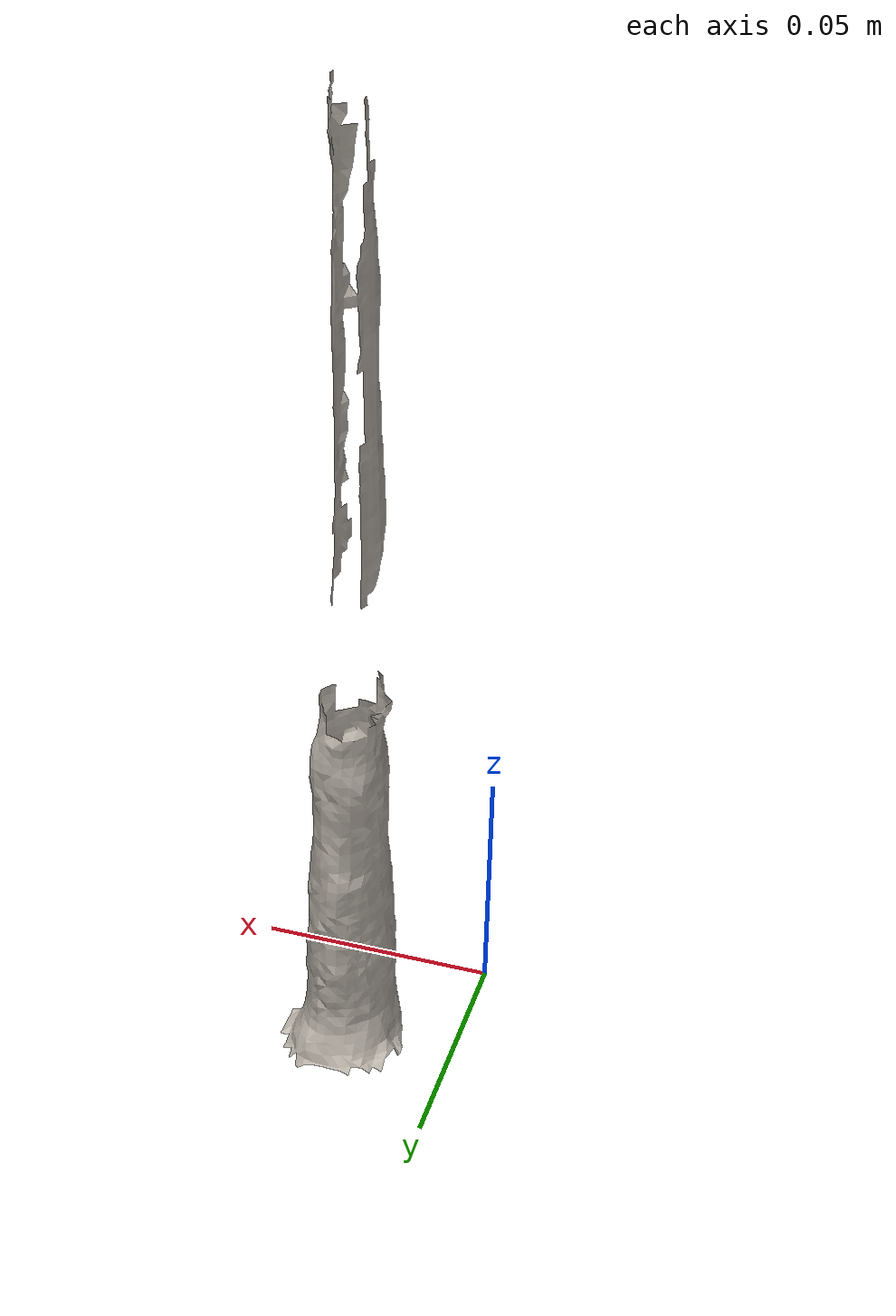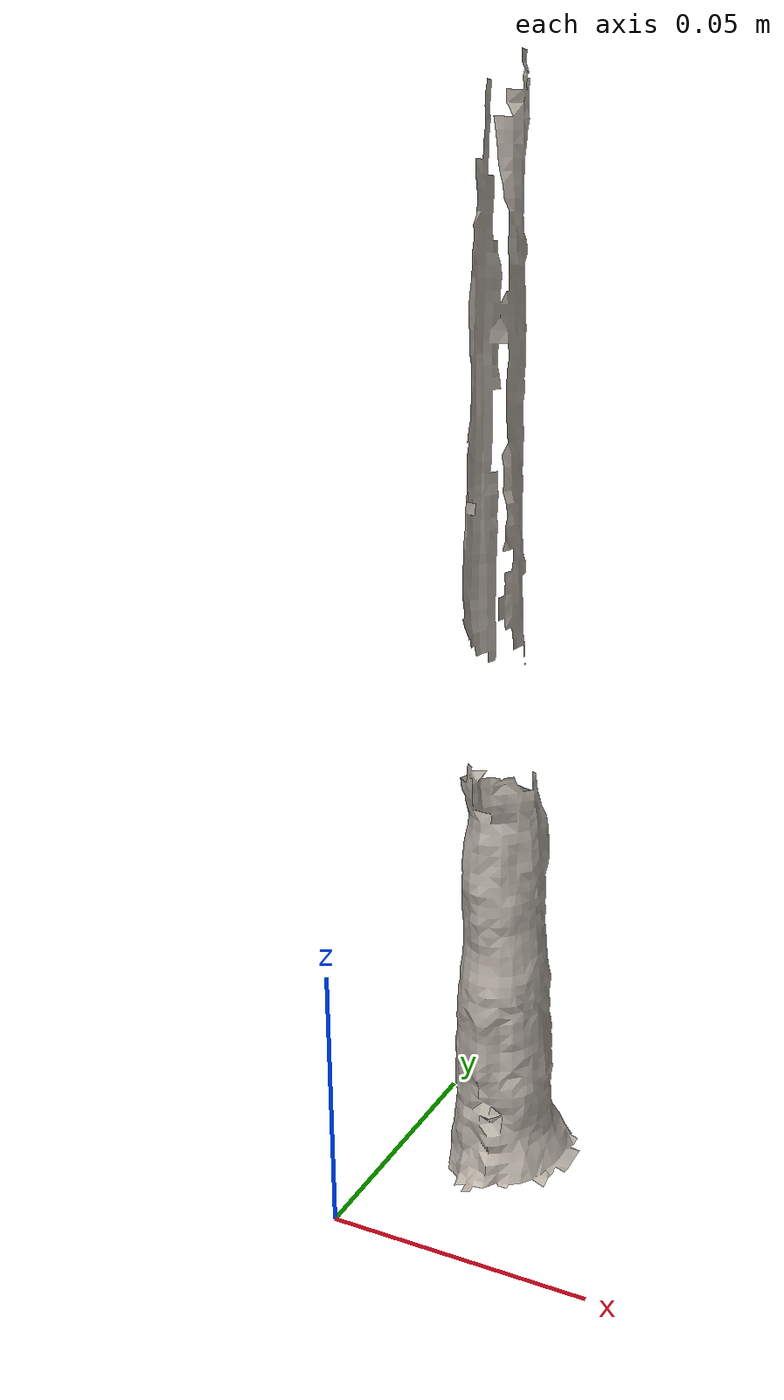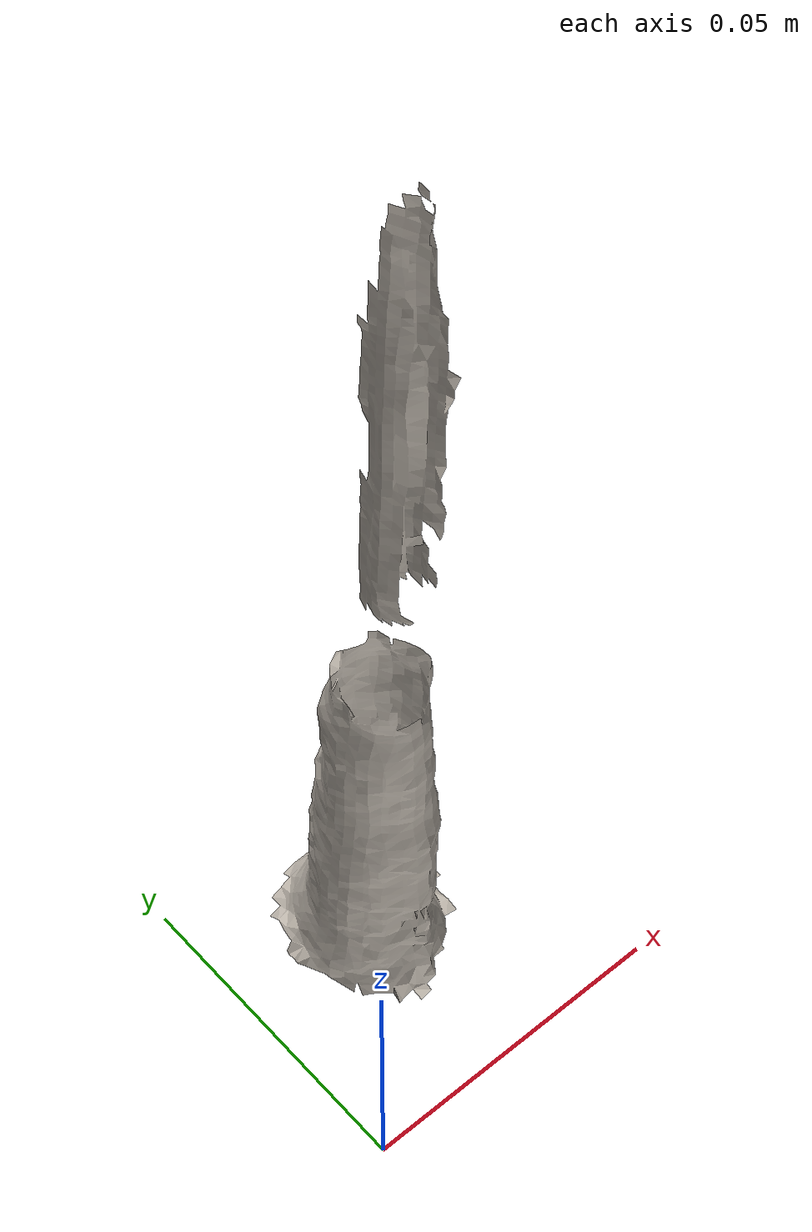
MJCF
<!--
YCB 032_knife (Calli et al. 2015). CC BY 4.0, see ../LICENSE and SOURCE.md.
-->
<mujoco model="ycb_032_knife">
  <compiler angle="radian" meshdir="." texturedir="."/>
  <asset>
    <texture name="knife" type="2d" file="texture_map.png"/>
    <material name="knife" texture="knife"/>
    <mesh name="knife" file="textured.obj"/>
  </asset>
  <worldbody>
    <body name="knife">
      <freejoint name="knife_free"/>
      <geom name="knife_visual" type="mesh" mesh="knife" material="knife" pos="0.0194 0.0274 -0.0039"
            contype="0" conaffinity="0" group="2" mass="0"/>
      <geom name="knife_collision" type="mesh" mesh="knife" pos="0.0194 0.0274 -0.0039" mass="0.031"
            group="3" condim="4" friction="0.9 0.005 0.0001"/>
    </body>
  </worldbody>
</mujoco>
